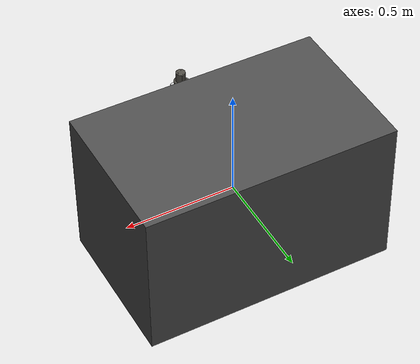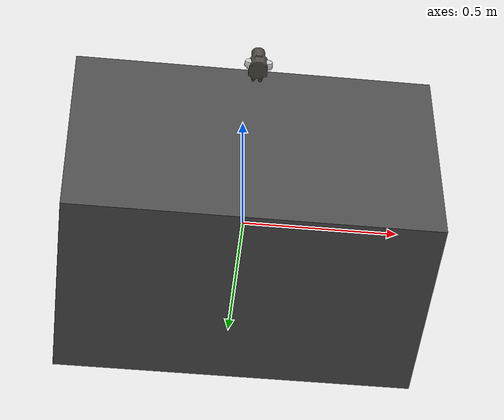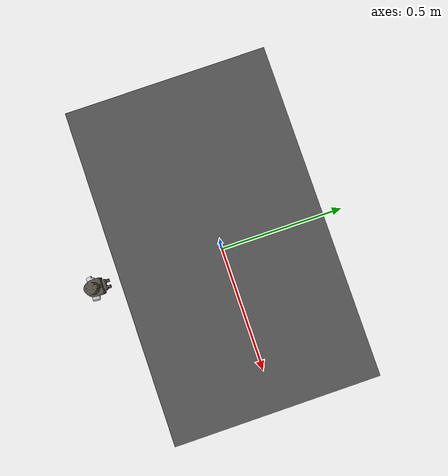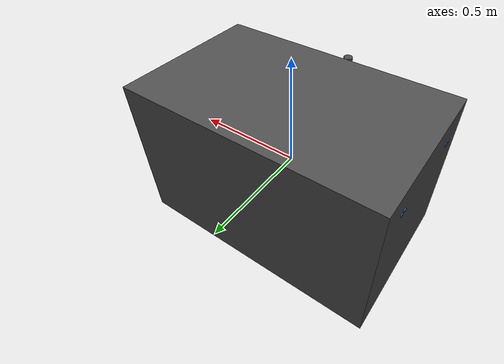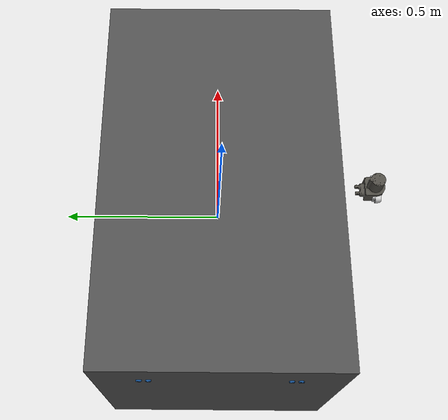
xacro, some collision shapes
<?xml version="1.0"?>
<robot xmlns:xacro="http://www.ros.org/wiki/xacro" xmlns:gz="http://gazebosim.org" name="main_robot">

  <!-- Inclusions des composants -->
  <xacro:include filename="/home/amr/polebot_amr_ws/src/polebot_amr_description/urdf/meca/base.xacro"/>
  <xacro:include filename="/home/amr/polebot_amr_ws/src/polebot_amr_description/urdf/meca/wheel.xacro"/>
  <xacro:include filename="/home/amr/polebot_amr_ws/src/polebot_amr_description/urdf/sensors/ultrasonic_sensors.xacro"/>
  <xacro:include filename="/home/amr/polebot_amr_ws/src/polebot_amr_description/urdf/sensors/lidar.xacro"/>
  <xacro:include filename="/home/amr/polebot_amr_ws/src/polebot_amr_description/urdf/sensors/camera.xacro"/>
  <xacro:include filename="/home/amr/polebot_amr_ws/src/polebot_amr_description/urdf/control/diff_drive.gazebo"/>

  <xacro:ultrasonic_sensor
    name="uls_frontleft"
    joint_xyz="0.206 -0.57 0.216"
    joint_rpy="0 0 0"/>
  <xacro:ultrasonic_sensor
    name="uls_frontright"
    joint_xyz="-0.206 -0.57 0.216"
    joint_rpy="0 0 0"/>
  <xacro:ultrasonic_sensor
    name="uls_backleft"
    joint_xyz="0.206 0.405 0.216"
    joint_rpy="0 0 3.14"/>
  <xacro:ultrasonic_sensor
    name="uls_backright"
    joint_xyz="-0.206 0.405 0.216"
    joint_rpy="0 0 3.14"/>

  <!-- Lidar -->
  <xacro:lidar_sensor
    name="lidar"
    parent_link="base_link"
    joint_xyz="0.465 0 0.272"
    joint_rpy="0 0 0"
    mesh_xyz="0 0 0"
    mesh_rpy="0 0 0"
    mesh="lidar.stl"/>

  <!-- Caméra -->
  <xacro:camera_sensor
    name="camera"
    parent_link="base_link"
    joint_xyz="0.47 0.0 0.216"
    joint_rpy="0 0 1.57"
    mesh_xyz="0 0 0"
    mesh_rpy="0 0 0"/>
</robot>

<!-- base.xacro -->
<robot xmlns:xacro="http://www.ros.org/wiki/xacro" name="robot">
  <xacro:property name="mesh_path" value="$(find polebot_amr_description)/meshes"/>
  <link name="base_footprint"/>

  <link name="base_link"/>

  <joint name="base_footprint_joint" type="fixed">
    <parent link="base_footprint"/>
    <child link="base_link"/>
    <origin xyz="0 0 0" rpy="0 0 -1.57"/>
  </joint>

  <link name="chassis">
    <visual>
      <origin xyz="0 0 0" rpy="0 0 1.57"/>
      <geometry>
        <mesh filename="file://${mesh_path}/polebot_amr.stl" scale="0.001 0.001 0.001"/>
      </geometry>
      <material name="gray">
        <color rgba="0.3 0.3 0.3 1.0"/>
      </material>
    </visual>
    <collision>
      <origin xyz="0 0 0" rpy="0 0 0"/>
      <geometry>
        <box size="0.7 1.15 0.7"/>
      </geometry>
    </collision>
    <inertial>
      <origin xyz="0 0 0.35" rpy="0 0 0"/>
      <mass value="5.0"/> <!-- Poids réduit pour répartir avec roues -->
      <!-- Inertie recalculée de manière approximative -->
      <inertia ixx="0.41" ixy="0" ixz="0" iyy="0.755" iyz="0" izz="0.755"/>
    </inertial>
  </link>

  <joint name="base_joint" type="fixed">
    <parent link="base_link"/>
    <child link="chassis"/>
    <origin xyz="0 0 0" rpy="0 0 0"/>
  </joint>

  <link name="left_wheel">
    <inertial>
      <origin xyz="0 0 0" rpy="0 0 0"/>
      <mass value="1.5"/> <!-- ↖ Plus lourd -->
      <inertia
        ixx="0.003" ixy="0.0" ixz="0.0"
        iyy="0.003" iyz="0.0"
        izz="0.002"/>
    </inertial>
    <collision>
      <geometry>
        <cylinder radius="0.07" length="0.05"/>
      </geometry>
      <origin xyz="0 0 0" rpy="0 0 0"/>
      <surface>
        <friction>
          <ode>
            <mu>1.0</mu>
            <mu2>0.0</mu2>
          </ode>
        </friction>
      </surface>
    </collision>
  </link>

  <joint name="left_wheel_joint" type="continuous">
    <parent link="base_link"/>
    <child link="left_wheel"/>
    <origin xyz="0.375 0.3 0.07" rpy="1.57 0 1.57"/> <!-- Position à adapter -->
    <axis xyz="0 -1 0">
        <dynamics damping="1.0" friction="0.5"/>  <!-- Ajout ici -->
    </axis>
  </joint>

   <link name="right_wheel">
    <inertial>
      <origin xyz="0 0 0" rpy="0 0 0"/>
      <mass value="1.5"/> <!-- ↖ Plus lourd -->
      <inertia
        ixx="0.003" ixy="0.0" ixz="0.0"
        iyy="0.003" iyz="0.0"
        izz="0.002"/>
    </inertial>
    <collision>
      <geometry>
        <cylinder radius="0.07" length="0.05"/>
      </geometry>
      <origin xyz="0 0 0" rpy="0 0 0"/>
      <surface>
        <friction>
          <ode>
            <mu>1.0</mu>
            <mu2>0.0</mu2>
          </ode>
        </friction>
      </surface>
    </collision>
  </link>

  <joint name="right_wheel_joint" type="continuous">
    <parent link="base_link"/>
    <child link="right_wheel"/>
    <origin xyz="-0.375 0.3 0.07" rpy="1.57 0 1.57"/> <!-- Position à adapter -->
    <axis xyz="0 -1 0">
        <dynamics damping="1.0" friction="0.5"/>  <!-- Ajout ici -->
    </axis>
  </joint>

  <link name="front_left_caster">
    <inertial>
      <mass value="1.5"/>
      <inertia ixx="0.41" ixy="0" ixz="0" iyy="0.755" iyz="0" izz="0.755"/>
    </inertial>
    <collision>
      <geometry>
        <cylinder radius="0.07" length="0.05"/>
      </geometry>
      <origin xyz="0 0 0" rpy="0 0 0"/>
      <surface>
        <friction>
          <ode>
            <mu>1.0</mu>
            <mu2>0.0</mu2>
          </ode>
        </friction>
      </surface>
    </collision>
  </link>

  <joint name="front_left_caster_joint" type="continuous">
    <parent link="base_link"/>
    <child link="front_left_caster"/>
    <origin xyz="0.375 -0.3 0.07" rpy="1.57 0 1.57"/> <!-- Position adaptée -->
    <axis xyz="0 -1 0"/>
  </joint>

  <link name="front_right_caster">
    <inertial>
      <mass value="1.5"/>
      <inertia ixx="0.41" ixy="0" ixz="0" iyy="0.755" iyz="0" izz="0.755"/>
    </inertial>
    <collision>
      <geometry>
        <cylinder radius="0.07" length="0.05"/>
      </geometry>
      <origin xyz="0 0 0" rpy="0 0 0"/>
      <surface>
        <friction>
          <ode>
            <mu>1.0</mu>
            <mu2>0.0</mu2>
          </ode>
        </friction>
      </surface>
    </collision>
  </link>

  <joint name="front_right_caster_joint" type="continuous">
    <parent link="base_link"/>
    <child link="front_right_caster"/>
    <origin xyz="-0.375 -0.3 0.07" rpy="1.57 0 1.57"/> <!-- Position adaptée -->
    <axis xyz="0 -1 0"/>
  </joint>

</robot>

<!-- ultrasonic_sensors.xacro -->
<robot xmlns:xacro="http://www.ros.org/wiki/xacro" name="ultrasonic_sensors">
  <xacro:property name="mesh_path" value="$(find polebot_amr_description)/meshes"/>
  <!-- Macro Xacro pour un capteur ultrasonique avec position locale -->
  <xacro:macro name="ultrasonic_sensor" params="
    name
    joint_xyz joint_rpy
    update_rate:=10
    ray_count:=5
    min_angle:='-1.702'
    max_angle:='-1.422'
    min_range:='0.02'
    max_range:='4.0'
    range_resolution:='0.01'
    always_on:=true
    visualize:=false
    enable_collision:=false">

    <!-- Définition du lien du capteur -->
    <link name="${name}">
      <inertial>
        <origin xyz="0 0 0" rpy="0 0 0"/>
        <mass value="0.0045"/>
        <inertia ixx="1e-7" ixy="0" ixz="0" iyy="5e-7" iyz="0" izz="6e-7"/>
      </inertial>

      <!-- Visual -->
      <visual>
        <origin xyz="0 0 0" rpy="0 0 0"/>
        <geometry>
          <mesh filename="file://${mesh_path}/hcsr04.stl" scale="0.001 0.001 0.001"/>
        </geometry>
        <material name="${name}_material">
          <color rgba="0.086 0.322 0.580 1.0"/>
        </material>
      </visual>

      <!-- Collision -->
      <collision>
        <origin xyz="0 0 0" rpy="0 0 0"/>
        <geometry>
          <mesh filename="file://${mesh_path}/hcsr04.stl" scale="0.001 0.001 0.001"/>
        </geometry>
      </collision>
    </link>

    <!-- Joint fixe entre le capteur et le parent -->
    <joint name="${name}_joint" type="fixed">
      <parent link="base_link"/>
      <child link="${name}"/>
      <origin xyz="${joint_xyz}" rpy="${joint_rpy}"/>
    </joint>

    <gazebo reference="${name}">
      <sensor name="${name}_sensor" type="gpu_lidar">
        <topic>${name}/range</topic>
        <update_rate>${update_rate}</update_rate>
        <always_on>${always_on}</always_on>
        <visualize>${visualize}</visualize>
        <lidar>
          <scan>
            <horizontal>
              <samples>${ray_count}</samples>
              <resolution>1</resolution>
              <min_angle>${min_angle}</min_angle>
              <max_angle>${max_angle}</max_angle>
            </horizontal>
          </scan>
          <range>
            <min>${min_range}</min>
            <max>${max_range}</max>
            <resolution>${range_resolution}</resolution>
          </range>
        </lidar>
        <gz_frame_id>${name}</gz_frame_id>
      </sensor>
    </gazebo>
  </xacro:macro>
</robot>

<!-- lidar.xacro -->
<robot xmlns:xacro="http://www.ros.org/wiki/xacro" name="lidar">
  <xacro:property name="mesh_path" value="$(find polebot_amr_description)/meshes"/>
  <!-- Macro lidar avec visual et collision identiques -->
  <xacro:macro name="lidar_sensor" params="
    name
    parent_link
    joint_xyz joint_rpy
    mesh_xyz mesh_rpy
    mesh
    update_rate:=10
    ray_count:=270
    min_angle:='-3.1456'
    max_angle:='3.1456'
    min_range:='0.2'
    max_range:='30.0'
    range_resolution:='0.013'
    topic_name:='laser_scan'
    always_on:=true
    visualize:=false
    enable_collision:=false">

    <link name="${name}">
      <inertial>
        <origin xyz="0 0 0.00977" rpy="0 0 0"/>
        <mass value="0.02915"/>
        <inertia ixx="3.79e-06" ixy="0" ixz="0" iyy="3.79e-06" iyz="0" izz="5.71e-06"/>
      </inertial>

      <!-- Visual -->
      <visual>
        <origin xyz="${mesh_xyz}" rpy="${mesh_rpy}"/>
        <geometry>
          <mesh filename="file://${mesh_path}/${mesh}" scale="0.001 0.001 0.001"/>
        </geometry>
        <material name="${name}_material">
          <color rgba="0.301961 0.290196 0.262745 1.0"/>
        </material>
      </visual>

      <!-- Collision (identique au visual) -->
      <collision>
        <origin xyz="${mesh_xyz}" rpy="${mesh_rpy}"/>
        <geometry>
          <mesh filename="file://${mesh_path}/${mesh}" scale="0.001 0.001 0.001"/>
        </geometry>
      </collision>
    </link>

    <!-- Joint fixe -->
    <joint name="${name}_joint" type="fixed">
      <origin xyz="${joint_xyz}" rpy="${joint_rpy}"/>
      <parent link="${parent_link}"/>
      <child link="${name}"/>
      <axis xyz="0 0 1"/>
      <limit effort="10" velocity="10"/>
    </joint>

    <gazebo reference="${name}">
      <sensor name="lidar_sensor" type="gpu_lidar">
        <topic>${topic_name}</topic>
        <update_rate>${update_rate}</update_rate>
        <always_on>${always_on}</always_on>
        <visualize>${visualize}</visualize>
        <lidar>
          <scan>
            <horizontal>
              <samples>${ray_count}</samples>
              <resolution>1</resolution>
              <min_angle>${min_angle}</min_angle>
              <max_angle>${max_angle}</max_angle>
            </horizontal>
            <!-- 2D Lidar -->
            <vertical>
              <samples>1</samples>
              <resolution>1</resolution>
              <min_angle>0</min_angle>
              <max_angle>0</max_angle>
            </vertical>
          </scan>
          <range>
            <min>${min_range}</min>
            <max>${max_range}</max>
            <resolution>${range_resolution}</resolution>
          </range>
        </lidar>
        <gz_frame_id>${name}</gz_frame_id>
      </sensor>
    </gazebo>
  </xacro:macro>
</robot>

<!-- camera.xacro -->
<robot xmlns:xacro="http://www.ros.org/wiki/xacro" name="camera">
  <xacro:property name="mesh_path" value="$(find polebot_amr_description)/meshes"/>
  <!-- Macro pour une caméra avec pose mesh configurable -->
  <xacro:macro name="camera_sensor" params="
    name
    parent_link
    joint_xyz joint_rpy
    mesh_xyz mesh_rpy ">

    <link name="${name}_link">
      <inertial>
        <origin xyz="0 0 0" rpy="0 0 0"/>
        <mass value="0.1"/>
        <inertia ixx="1e-05" ixy="0" ixz="0" iyy="1e-05" iyz="0" izz="1e-05"/>
      </inertial>

      <visual>
        <origin xyz="${mesh_xyz}" rpy="${mesh_rpy}"/>
        <geometry>
          <mesh filename="file://${mesh_path}/camera.stl" scale="0.001 0.001 0.001"/>
        </geometry>
        <material name="${name}_material">
          <color rgba="0.8 0.8 0.8 1.0"/>
        </material>
      </visual>

      <collision>
        <origin xyz="${mesh_xyz}" rpy="${mesh_rpy}"/>
        <geometry>
          <mesh filename="file://${mesh_path}/camera.stl" scale="0.001 0.001 0.001"/>
        </geometry>
      </collision>
    </link>

    <joint name="${name}_joint" type="fixed">
      <origin xyz="${joint_xyz}" rpy="${joint_rpy}"/>
      <parent link="${parent_link}"/>
      <child link="${name}_link"/>
    </joint>

    <joint type="fixed" name="${name}_optical_joint">
      <origin xyz="0 0 0" rpy="0 0 0"/>
      <child link="${name}_link_optical"/>
      <parent link="${name}_link"/>
    </joint>

    <!-- 6 - Camera Link Optical -->
    <link name="${name}_link_optical">
    </link>

    <!-- 7 - Camera Gazebo Plugin -->
    <gazebo reference="${name}_link">
      <sensor name="${name}" type="camera">
        <camera>
          <horizontal_fov>1.1</horizontal_fov>
          <image>
            <width>640</width>
            <height>480</height>
            <format>R8G8B8</format>
          </image>
          <clip>
            <near>0.1</near>
            <far>15</far>
          </clip>
          <noise>
            <type>gaussian</type>
            <!-- Noise is sampled independently per pixel on each frame.
                That pixel's noise value is added to each of its color
                channels, which at that point lie in the range [0,1]. -->
            <mean>0.0</mean>
            <stddev>0.007</stddev>
          </noise>
          <optical_frame_id>${name}_link_optical</optical_frame_id>
          <camera_info_topic>${name}/camera_info</camera_info_topic>
        </camera>
        <always_on>1</always_on>
        <update_rate>20</update_rate>
        <visualize>true</visualize>
        <topic>${name}/image</topic>
      </sensor>
    </gazebo>
  </xacro:macro>
</robot>
